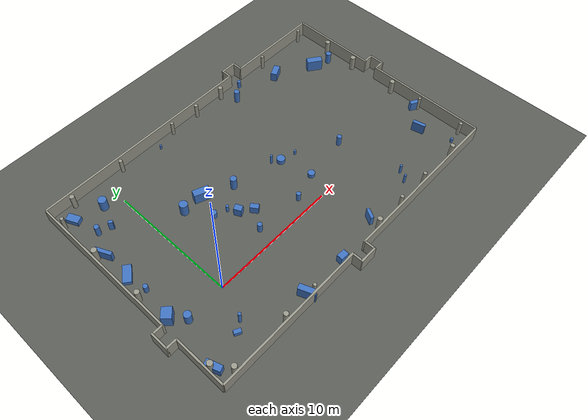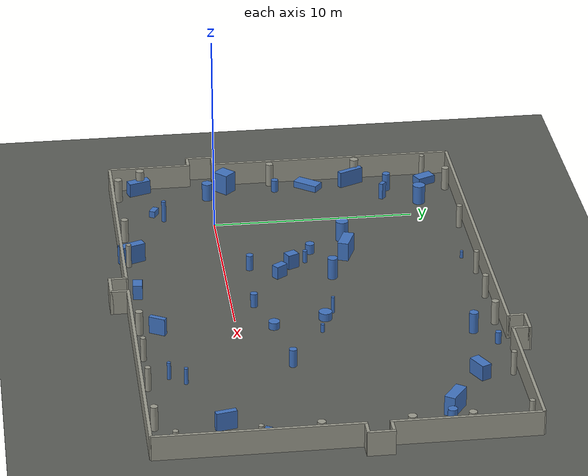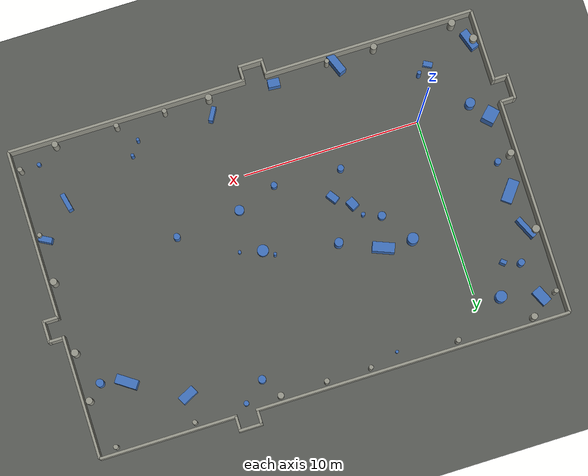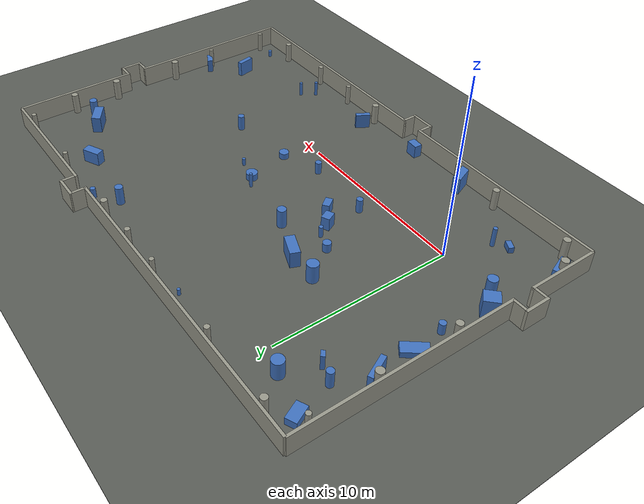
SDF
<sdf version="1.9">
 <world name="default">
  <model name="track_feature">
   <static>true</static>
   <link name="feature_link">
    <collision name="feat_box_1_collision">
     <pose>-3.809810 7.418504 0.416575 0.000000 0.000000 2.005932</pose>
     <geometry><box><size>1.323052 0.273377 0.833149</size></box></geometry>
    </collision>
    <visual name="feat_box_1_visual">
     <pose>-3.809810 7.418504 0.416575 0.000000 0.000000 2.005932</pose>
     <geometry><box><size>1.323052 0.273377 0.833149</size></box></geometry>
     <material><ambient>0.25 0.45 0.75 1</ambient><diffuse>0.25 0.45 0.75 1</diffuse></material>
    </visual>
    <collision name="feat_box_3_collision">
     <pose>-2.042459 8.848114 0.425365 0.000000 0.000000 2.450571</pose>
     <geometry><box><size>0.343209 0.214248 0.850729</size></box></geometry>
    </collision>
    <visual name="feat_box_3_visual">
     <pose>-2.042459 8.848114 0.425365 0.000000 0.000000 2.450571</pose>
     <geometry><box><size>0.343209 0.214248 0.850729</size></box></geometry>
     <material><ambient>0.25 0.45 0.75 1</ambient><diffuse>0.25 0.45 0.75 1</diffuse></material>
    </visual>
    <collision name="feat_box_7_collision">
     <pose>21.452729 0.223334 0.393215 0.000000 0.000000 -0.503645</pose>
     <geometry><box><size>0.743803 0.319657 0.786429</size></box></geometry>
    </collision>
    <visual name="feat_box_7_visual">
     <pose>21.452729 0.223334 0.393215 0.000000 0.000000 -0.503645</pose>
     <geometry><box><size>0.743803 0.319657 0.786429</size></box></geometry>
     <material><ambient>0.25 0.45 0.75 1</ambient><diffuse>0.25 0.45 0.75 1</diffuse></material>
    </visual>
    <collision name="feat_box_9_collision">
     <pose>3.380648 -4.403814 0.484479 0.000000 0.000000 1.941704</pose>
     <geometry><box><size>1.287372 0.425407 0.968957</size></box></geometry>
    </collision>
    <visual name="feat_box_9_visual">
     <pose>3.380648 -4.403814 0.484479 0.000000 0.000000 1.941704</pose>
     <geometry><box><size>1.287372 0.425407 0.968957</size></box></geometry>
     <material><ambient>0.25 0.45 0.75 1</ambient><diffuse>0.25 0.45 0.75 1</diffuse></material>
    </visual>
    <collision name="feat_box_10_collision">
     <pose>10.717737 -3.709006 0.430798 0.000000 0.000000 -2.095517</pose>
     <geometry><box><size>0.815494 0.242279 0.861597</size></box></geometry>
    </collision>
    <visual name="feat_box_10_visual">
     <pose>10.717737 -3.709006 0.430798 0.000000 0.000000 -2.095517</pose>
     <geometry><box><size>0.815494 0.242279 0.861597</size></box></geometry>
     <material><ambient>0.25 0.45 0.75 1</ambient><diffuse>0.25 0.45 0.75 1</diffuse></material>
    </visual>
    <collision name="feat_box_12_collision">
     <pose>4.846630 3.326817 0.373546 0.000000 0.000000 0.445561</pose>
     <geometry><box><size>0.464032 0.587918 0.747092</size></box></geometry>
    </collision>
    <visual name="feat_box_12_visual">
     <pose>4.846630 3.326817 0.373546 0.000000 0.000000 0.445561</pose>
     <geometry><box><size>0.464032 0.587918 0.747092</size></box></geometry>
     <material><ambient>0.25 0.45 0.75 1</ambient><diffuse>0.25 0.45 0.75 1</diffuse></material>
    </visual>
    <collision name="feat_box_15_collision">
     <pose>19.762746 -1.393940 0.451281 0.000000 0.000000 -1.356863</pose>
     <geometry><box><size>0.981033 0.267619 0.902562</size></box></geometry>
    </collision>
    <visual name="feat_box_15_visual">
     <pose>19.762746 -1.393940 0.451281 0.000000 0.000000 -1.356863</pose>
     <geometry><box><size>0.981033 0.267619 0.902562</size></box></geometry>
     <material><ambient>0.25 0.45 0.75 1</ambient><diffuse>0.25 0.45 0.75 1</diffuse></material>
    </visual>
    <collision name="feat_box_16_collision">
     <pose>-3.859514 0.916635 0.530535 0.000000 0.000000 0.785331</pose>
     <geometry><box><size>0.813112 0.728394 1.061070</size></box></geometry>
    </collision>
    <visual name="feat_box_16_visual">
     <pose>-3.859514 0.916635 0.530535 0.000000 0.000000 0.785331</pose>
     <geometry><box><size>0.813112 0.728394 1.061070</size></box></geometry>
     <material><ambient>0.25 0.45 0.75 1</ambient><diffuse>0.25 0.45 0.75 1</diffuse></material>
    </visual>
    <collision name="feat_box_19_collision">
     <pose>-1.501257 -2.917922 0.169748 0.000000 0.000000 -0.487104</pose>
     <geometry><box><size>0.526159 0.292644 0.339495</size></box></geometry>
    </collision>
    <visual name="feat_box_19_visual">
     <pose>-1.501257 -2.917922 0.169748 0.000000 0.000000 -0.487104</pose>
     <geometry><box><size>0.526159 0.292644 0.339495</size></box></geometry>
     <material><ambient>0.25 0.45 0.75 1</ambient><diffuse>0.25 0.45 0.75 1</diffuse></material>
    </visual>
    <collision name="feat_box_20_collision">
     <pose>6.971918 -4.373635 0.371825 0.000000 0.000000 3.059598</pose>
     <geometry><box><size>0.665051 0.462882 0.743650</size></box></geometry>
    </collision>
    <visual name="feat_box_20_visual">
     <pose>6.971918 -4.373635 0.371825 0.000000 0.000000 3.059598</pose>
     <geometry><box><size>0.665051 0.462882 0.743650</size></box></geometry>
     <material><ambient>0.25 0.45 0.75 1</ambient><diffuse>0.25 0.45 0.75 1</diffuse></material>
    </visual>
    <collision name="feat_box_22_collision">
     <pose>-4.081012 -3.498248 0.355935 0.000000 0.000000 1.901082</pose>
     <geometry><box><size>1.129871 0.453120 0.711871</size></box></geometry>
    </collision>
    <visual name="feat_box_22_visual">
     <pose>-4.081012 -3.498248 0.355935 0.000000 0.000000 1.901082</pose>
     <geometry><box><size>1.129871 0.453120 0.711871</size></box></geometry>
     <material><ambient>0.25 0.45 0.75 1</ambient><diffuse>0.25 0.45 0.75 1</diffuse></material>
    </visual>
    <collision name="feat_box_24_collision">
     <pose>3.961923 6.140309 0.469284 0.000000 0.000000 2.761566</pose>
     <geometry><box><size>1.232044 0.540974 0.938568</size></box></geometry>
    </collision>
    <visual name="feat_box_24_visual">
     <pose>3.961923 6.140309 0.469284 0.000000 0.000000 2.761566</pose>
     <geometry><box><size>1.232044 0.540974 0.938568</size></box></geometry>
     <material><ambient>0.25 0.45 0.75 1</ambient><diffuse>0.25 0.45 0.75 1</diffuse></material>
    </visual>
    <collision name="feat_box_29_collision">
     <pose>5.765375 2.644008 0.322663 0.000000 0.000000 2.177901</pose>
     <geometry><box><size>0.639912 0.391079 0.645326</size></box></geometry>
    </collision>
    <visual name="feat_box_29_visual">
     <pose>5.765375 2.644008 0.322663 0.000000 0.000000 2.177901</pose>
     <geometry><box><size>0.639912 0.391079 0.645326</size></box></geometry>
     <material><ambient>0.25 0.45 0.75 1</ambient><diffuse>0.25 0.45 0.75 1</diffuse></material>
    </visual>
    <collision name="feat_box_30_collision">
     <pose>-3.663959 5.187861 0.169745 0.000000 0.000000 -2.227155</pose>
     <geometry><box><size>1.311141 0.619336 0.339490</size></box></geometry>
    </collision>
    <visual name="feat_box_30_visual">
     <pose>-3.663959 5.187861 0.169745 0.000000 0.000000 -2.227155</pose>
     <geometry><box><size>1.311141 0.619336 0.339490</size></box></geometry>
     <material><ambient>0.25 0.45 0.75 1</ambient><diffuse>0.25 0.45 0.75 1</diffuse></material>
    </visual>
    <collision name="feat_box_31_collision">
     <pose>19.454769 8.994990 0.489083 0.000000 0.000000 -0.609888</pose>
     <geometry><box><size>1.230241 0.519669 0.978165</size></box></geometry>
    </collision>
    <visual name="feat_box_31_visual">
     <pose>19.454769 8.994990 0.489083 0.000000 0.000000 -0.609888</pose>
     <geometry><box><size>1.230241 0.519669 0.978165</size></box></geometry>
     <material><ambient>0.25 0.45 0.75 1</ambient><diffuse>0.25 0.45 0.75 1</diffuse></material>
    </visual>
    <collision name="feat_box_32_collision">
     <pose>-3.501859 11.224110 0.211593 0.000000 0.000000 -1.138675</pose>
     <geometry><box><size>0.967530 0.573215 0.423186</size></box></geometry>
    </collision>
    <visual name="feat_box_32_visual">
     <pose>-3.501859 11.224110 0.211593 0.000000 0.000000 -1.138675</pose>
     <geometry><box><size>0.967530 0.573215 0.423186</size></box></geometry>
     <material><ambient>0.25 0.45 0.75 1</ambient><diffuse>0.25 0.45 0.75 1</diffuse></material>
    </visual>
    <collision name="feat_box_39_collision">
     <pose>16.509826 10.660460 0.383737 0.000000 0.000000 0.463177</pose>
     <geometry><box><size>0.990468 0.492767 0.767475</size></box></geometry>
    </collision>
    <visual name="feat_box_39_visual">
     <pose>16.509826 10.660460 0.383737 0.000000 0.000000 0.463177</pose>
     <geometry><box><size>0.990468 0.492767 0.767475</size></box></geometry>
     <material><ambient>0.25 0.45 0.75 1</ambient><diffuse>0.25 0.45 0.75 1</diffuse></material>
    </visual>
    <collision name="feat_cyl_2_collision">
     <pose>13.615934 12.022297 0.303059 0.000000 0.000000 0.000000</pose>
     <geometry><cylinder><radius>0.142957</radius><length>0.606119</length></cylinder></geometry>
    </collision>
    <visual name="feat_cyl_2_visual">
     <pose>13.615934 12.022297 0.303059 0.000000 0.000000 0.000000</pose>
     <geometry><cylinder><radius>0.142957</radius><length>0.606119</length></cylinder></geometry>
     <material><ambient>0.25 0.45 0.75 1</ambient><diffuse>0.25 0.45 0.75 1</diffuse></material>
    </visual>
    <collision name="feat_cyl_4_collision">
     <pose>-1.330142 10.619252 0.488190 0.000000 0.000000 0.000000</pose>
     <geometry><cylinder><radius>0.315775</radius><length>0.976379</length></cylinder></geometry>
    </collision>
    <visual name="feat_cyl_4_visual">
     <pose>-1.330142 10.619252 0.488190 0.000000 0.000000 0.000000</pose>
     <geometry><cylinder><radius>0.315775</radius><length>0.976379</length></cylinder></geometry>
     <material><ambient>0.25 0.45 0.75 1</ambient><diffuse>0.25 0.45 0.75 1</diffuse></material>
    </visual>
    <collision name="feat_cyl_5_collision">
     <pose>-2.956925 9.169408 0.459539 0.000000 0.000000 0.000000</pose>
     <geometry><cylinder><radius>0.188729</radius><length>0.919078</length></cylinder></geometry>
    </collision>
    <visual name="feat_cyl_5_visual">
     <pose>-2.956925 9.169408 0.459539 0.000000 0.000000 0.000000</pose>
     <geometry><cylinder><radius>0.188729</radius><length>0.919078</length></cylinder></geometry>
     <material><ambient>0.25 0.45 0.75 1</ambient><diffuse>0.25 0.45 0.75 1</diffuse></material>
    </visual>
    <collision name="feat_cyl_6_collision">
     <pose>11.529687 4.007475 0.205814 0.000000 0.000000 0.000000</pose>
     <geometry><cylinder><radius>0.092364</radius><length>0.411628</length></cylinder></geometry>
    </collision>
    <visual name="feat_cyl_6_visual">
     <pose>11.529687 4.007475 0.205814 0.000000 0.000000 0.000000</pose>
     <geometry><cylinder><radius>0.092364</radius><length>0.411628</length></cylinder></geometry>
     <material><ambient>0.25 0.45 0.75 1</ambient><diffuse>0.25 0.45 0.75 1</diffuse></material>
    </visual>
    <collision name="feat_cyl_8_collision">
     <pose>4.958024 11.767596 0.180495 0.000000 0.000000 0.000000</pose>
     <geometry><cylinder><radius>0.082929</radius><length>0.360991</length></cylinder></geometry>
    </collision>
    <visual name="feat_cyl_8_visual">
     <pose>4.958024 11.767596 0.180495 0.000000 0.000000 0.000000</pose>
     <geometry><cylinder><radius>0.082929</radius><length>0.360991</length></cylinder></geometry>
     <material><ambient>0.25 0.45 0.75 1</ambient><diffuse>0.25 0.45 0.75 1</diffuse></material>
    </visual>
    <collision name="feat_cyl_11_collision">
     <pose>10.288206 4.299430 0.197554 0.000000 0.000000 0.000000</pose>
     <geometry><cylinder><radius>0.317884</radius><length>0.395107</length></cylinder></geometry>
    </collision>
    <visual name="feat_cyl_11_visual">
     <pose>10.288206 4.299430 0.197554 0.000000 0.000000 0.000000</pose>
     <geometry><cylinder><radius>0.317884</radius><length>0.395107</length></cylinder></geometry>
     <material><ambient>0.25 0.45 0.75 1</ambient><diffuse>0.25 0.45 0.75 1</diffuse></material>
    </visual>
    <collision name="feat_cyl_13_collision">
     <pose>15.575689 -2.805210 0.410484 0.000000 0.000000 0.000000</pose>
     <geometry><cylinder><radius>0.096163</radius><length>0.820969</length></cylinder></geometry>
    </collision>
    <visual name="feat_cyl_13_visual">
     <pose>15.575689 -2.805210 0.410484 0.000000 0.000000 0.000000</pose>
     <geometry><cylinder><radius>0.096163</radius><length>0.820969</length></cylinder></geometry>
     <material><ambient>0.25 0.45 0.75 1</ambient><diffuse>0.25 0.45 0.75 1</diffuse></material>
    </visual>
    <collision name="feat_cyl_14_collision">
     <pose>10.861858 1.783233 0.179074 0.000000 0.000000 0.000000</pose>
     <geometry><cylinder><radius>0.270033</radius><length>0.358148</length></cylinder></geometry>
    </collision>
    <visual name="feat_cyl_14_visual">
     <pose>10.861858 1.783233 0.179074 0.000000 0.000000 0.000000</pose>
     <geometry><cylinder><radius>0.270033</radius><length>0.358148</length></cylinder></geometry>
     <material><ambient>0.25 0.45 0.75 1</ambient><diffuse>0.25 0.45 0.75 1</diffuse></material>
    </visual>
    <collision name="feat_cyl_17_collision">
     <pose>3.488801 4.409248 0.253221 0.000000 0.000000 0.000000</pose>
     <geometry><cylinder><radius>0.221841</radius><length>0.506442</length></cylinder></geometry>
    </collision>
    <visual name="feat_cyl_17_visual">
     <pose>3.488801 4.409248 0.253221 0.000000 0.000000 0.000000</pose>
     <geometry><cylinder><radius>0.221841</radius><length>0.506442</length></cylinder></geometry>
     <material><ambient>0.25 0.45 0.75 1</ambient><diffuse>0.25 0.45 0.75 1</diffuse></material>
    </visual>
    <collision name="feat_cyl_18_collision">
     <pose>6.214896 5.179009 0.538637 0.000000 0.000000 0.000000</pose>
     <geometry><cylinder><radius>0.241900</radius><length>1.077273</length></cylinder></geometry>
    </collision>
    <visual name="feat_cyl_18_visual">
     <pose>6.214896 5.179009 0.538637 0.000000 0.000000 0.000000</pose>
     <geometry><cylinder><radius>0.241900</radius><length>1.077273</length></cylinder></geometry>
     <material><ambient>0.25 0.45 0.75 1</ambient><diffuse>0.25 0.45 0.75 1</diffuse></material>
    </visual>
    <collision name="feat_cyl_21_collision">
     <pose>15.044150 -3.546829 0.434954 0.000000 0.000000 0.000000</pose>
     <geometry><cylinder><radius>0.091175</radius><length>0.869908</length></cylinder></geometry>
    </collision>
    <visual name="feat_cyl_21_visual">
     <pose>15.044150 -3.546829 0.434954 0.000000 0.000000 0.000000</pose>
     <geometry><cylinder><radius>0.091175</radius><length>0.869908</length></cylinder></geometry>
     <material><ambient>0.25 0.45 0.75 1</ambient><diffuse>0.25 0.45 0.75 1</diffuse></material>
    </visual>
    <collision name="feat_cyl_23_collision">
     <pose>12.419615 11.059254 0.525832 0.000000 0.000000 0.000000</pose>
     <geometry><cylinder><radius>0.215356</radius><length>1.051664</length></cylinder></geometry>
    </collision>
    <visual name="feat_cyl_23_visual">
     <pose>12.419615 11.059254 0.525832 0.000000 0.000000 0.000000</pose>
     <geometry><cylinder><radius>0.215356</radius><length>1.051664</length></cylinder></geometry>
     <material><ambient>0.25 0.45 0.75 1</ambient><diffuse>0.25 0.45 0.75 1</diffuse></material>
    </visual>
    <collision name="feat_cyl_25_collision">
     <pose>9.715534 4.732049 0.419815 0.000000 0.000000 0.000000</pose>
     <geometry><cylinder><radius>0.087187</radius><length>0.839630</length></cylinder></geometry>
    </collision>
    <visual name="feat_cyl_25_visual">
     <pose>9.715534 4.732049 0.419815 0.000000 0.000000 0.000000</pose>
     <geometry><cylinder><radius>0.087187</radius><length>0.839630</length></cylinder></geometry>
     <material><ambient>0.25 0.45 0.75 1</ambient><diffuse>0.25 0.45 0.75 1</diffuse></material>
    </visual>
    <collision name="feat_cyl_26_collision">
     <pose>4.453923 4.045645 0.314575 0.000000 0.000000 0.000000</pose>
     <geometry><cylinder><radius>0.110395</radius><length>0.629150</length></cylinder></geometry>
    </collision>
    <visual name="feat_cyl_26_visual">
     <pose>4.453923 4.045645 0.314575 0.000000 0.000000 0.000000</pose>
     <geometry><cylinder><radius>0.110395</radius><length>0.629150</length></cylinder></geometry>
     <material><ambient>0.25 0.45 0.75 1</ambient><diffuse>0.25 0.45 0.75 1</diffuse></material>
    </visual>
    <collision name="feat_cyl_27_collision">
     <pose>-3.493359 3.463626 0.317958 0.000000 0.000000 0.000000</pose>
     <geometry><cylinder><radius>0.174557</radius><length>0.635917</length></cylinder></geometry>
    </collision>
    <visual name="feat_cyl_27_visual">
     <pose>-3.493359 3.463626 0.317958 0.000000 0.000000 0.000000</pose>
     <geometry><cylinder><radius>0.174557</radius><length>0.635917</length></cylinder></geometry>
     <material><ambient>0.25 0.45 0.75 1</ambient><diffuse>0.25 0.45 0.75 1</diffuse></material>
    </visual>
    <collision name="feat_cyl_28_collision">
     <pose>8.643108 1.067017 0.354109 0.000000 0.000000 0.000000</pose>
     <geometry><cylinder><radius>0.171908</radius><length>0.708217</length></cylinder></geometry>
    </collision>
    <visual name="feat_cyl_28_visual">
     <pose>8.643108 1.067017 0.354109 0.000000 0.000000 0.000000</pose>
     <geometry><cylinder><radius>0.171908</radius><length>0.708217</length></cylinder></geometry>
     <material><ambient>0.25 0.45 0.75 1</ambient><diffuse>0.25 0.45 0.75 1</diffuse></material>
    </visual>
    <collision name="feat_cyl_33_collision">
     <pose>2.290929 6.166935 0.521097 0.000000 0.000000 0.000000</pose>
     <geometry><cylinder><radius>0.311683</radius><length>1.042193</length></cylinder></geometry>
    </collision>
    <visual name="feat_cyl_33_visual">
     <pose>2.290929 6.166935 0.521097 0.000000 0.000000 0.000000</pose>
     <geometry><cylinder><radius>0.311683</radius><length>1.042193</length></cylinder></geometry>
     <material><ambient>0.25 0.45 0.75 1</ambient><diffuse>0.25 0.45 0.75 1</diffuse></material>
    </visual>
    <collision name="feat_cyl_34_collision">
     <pose>-3.010940 -0.061690 0.452321 0.000000 0.000000 0.000000</pose>
     <geometry><cylinder><radius>0.269051</radius><length>0.904642</length></cylinder></geometry>
    </collision>
    <visual name="feat_cyl_34_visual">
     <pose>-3.010940 -0.061690 0.452321 0.000000 0.000000 0.000000</pose>
     <geometry><cylinder><radius>0.269051</radius><length>0.904642</length></cylinder></geometry>
     <material><ambient>0.25 0.45 0.75 1</ambient><diffuse>0.25 0.45 0.75 1</diffuse></material>
    </visual>
    <collision name="feat_cyl_35_collision">
     <pose>20.638772 -3.917034 0.184066 0.000000 0.000000 0.000000</pose>
     <geometry><cylinder><radius>0.112194</radius><length>0.368133</length></cylinder></geometry>
    </collision>
    <visual name="feat_cyl_35_visual">
     <pose>20.638772 -3.917034 0.184066 0.000000 0.000000 0.000000</pose>
     <geometry><cylinder><radius>0.112194</radius><length>0.368133</length></cylinder></geometry>
     <material><ambient>0.25 0.45 0.75 1</ambient><diffuse>0.25 0.45 0.75 1</diffuse></material>
    </visual>
    <collision name="feat_cyl_36_collision">
     <pose>4.872748 1.266040 0.396906 0.000000 0.000000 0.000000</pose>
     <geometry><cylinder><radius>0.177198</radius><length>0.793813</length></cylinder></geometry>
    </collision>
    <visual name="feat_cyl_36_visual">
     <pose>4.872748 1.266040 0.396906 0.000000 0.000000 0.000000</pose>
     <geometry><cylinder><radius>0.177198</radius><length>0.793813</length></cylinder></geometry>
     <material><ambient>0.25 0.45 0.75 1</ambient><diffuse>0.25 0.45 0.75 1</diffuse></material>
    </visual>
    <collision name="feat_cyl_37_collision">
     <pose>-0.820698 -2.466021 0.555763 0.000000 0.000000 0.000000</pose>
     <geometry><cylinder><radius>0.112846</radius><length>1.111527</length></cylinder></geometry>
    </collision>
    <visual name="feat_cyl_37_visual">
     <pose>-0.820698 -2.466021 0.555763 0.000000 0.000000 0.000000</pose>
     <geometry><cylinder><radius>0.112846</radius><length>1.111527</length></cylinder></geometry>
     <material><ambient>0.25 0.45 0.75 1</ambient><diffuse>0.25 0.45 0.75 1</diffuse></material>
    </visual>
    <collision name="feat_cyl_38_collision">
     <pose>20.852837 8.632846 0.469570 0.000000 0.000000 0.000000</pose>
     <geometry><cylinder><radius>0.219843</radius><length>0.939141</length></cylinder></geometry>
    </collision>
    <visual name="feat_cyl_38_visual">
     <pose>20.852837 8.632846 0.469570 0.000000 0.000000 0.000000</pose>
     <geometry><cylinder><radius>0.219843</radius><length>0.939141</length></cylinder></geometry>
     <material><ambient>0.25 0.45 0.75 1</ambient><diffuse>0.25 0.45 0.75 1</diffuse></material>
    </visual>
    <collision name="feat_cyl_40_collision">
     <pose>14.558220 2.235412 0.444483 0.000000 0.000000 0.000000</pose>
     <geometry><cylinder><radius>0.183471</radius><length>0.888966</length></cylinder></geometry>
    </collision>
    <visual name="feat_cyl_40_visual">
     <pose>14.558220 2.235412 0.444483 0.000000 0.000000 0.000000</pose>
     <geometry><cylinder><radius>0.183471</radius><length>0.888966</length></cylinder></geometry>
     <material><ambient>0.25 0.45 0.75 1</ambient><diffuse>0.25 0.45 0.75 1</diffuse></material>
    </visual>
   </link>
  </model>
  <model name="track_ground">
   <static>true</static>
   <link name="ground_link">
    <collision name="ground_collision">
     <pose>8.539221 3.998674 -0.025000 0.000000 0.000000 0.000000</pose>
     <geometry><box><size>80.000000 80.000000 0.050000</size></box></geometry>
     <surface>
      <friction><ode><mu>1.2</mu><mu2>1.2</mu2></ode></friction>
      <contact><ode><kp>100000.0</kp><kd>10.0</kd></ode></contact>
     </surface>
    </collision>
    <visual name="ground_visual">
     <pose>8.539221 3.998674 -0.025000 0.000000 0.000000 0.000000</pose>
     <geometry><box><size>80.000000 80.000000 0.050000</size></box></geometry>
     <material><ambient>0.35 0.36 0.34 1</ambient><diffuse>0.35 0.36 0.34 1</diffuse></material>
    </visual>
   </link>
  </model>
  <model name="track_room">
   <static>true</static>
   <link name="room_link">
    <collision name="hall_0_0_collision">
     <pose>1.369040 -4.927946 0.600000 0.000000 0.000000 0.000000</pose>
     <geometry><box><size>11.927614 0.150000 1.200000</size></box></geometry>
    </collision>
    <visual name="hall_0_0_visual">
     <pose>1.369040 -4.927946 0.600000 0.000000 0.000000 0.000000</pose>
     <geometry><box><size>11.927614 0.150000 1.200000</size></box></geometry>
     <material><ambient>0.6 0.6 0.55 1</ambient><diffuse>0.6 0.6 0.55 1</diffuse></material>
    </visual>
    <collision name="hall_0_130_collision">
     <pose>15.236692 -4.927946 0.600000 0.000000 0.000000 0.000000</pose>
     <geometry><box><size>13.556134 0.150000 1.200000</size></box></geometry>
    </collision>
    <visual name="hall_0_130_visual">
     <pose>15.236692 -4.927946 0.600000 0.000000 0.000000 0.000000</pose>
     <geometry><box><size>13.556134 0.150000 1.200000</size></box></geometry>
     <material><ambient>0.6 0.6 0.55 1</ambient><diffuse>0.6 0.6 0.55 1</diffuse></material>
    </visual>
    <collision name="hall_niche_0_collision">
     <pose>7.895736 -5.727946 0.600000 0.000000 0.000000 0.000000</pose>
     <geometry><box><size>1.425778 0.150000 1.200000</size></box></geometry>
    </collision>
    <visual name="hall_niche_0_visual">
     <pose>7.895736 -5.727946 0.600000 0.000000 0.000000 0.000000</pose>
     <geometry><box><size>1.425778 0.150000 1.200000</size></box></geometry>
     <material><ambient>0.6 0.6 0.55 1</ambient><diffuse>0.6 0.6 0.55 1</diffuse></material>
    </visual>
    <collision name="hall_jamb_0_-1_collision">
     <pose>7.257847 -5.327946 0.600000 0.000000 0.000000 0.000000</pose>
     <geometry><box><size>0.150000 0.800000 1.200000</size></box></geometry>
    </collision>
    <visual name="hall_jamb_0_-1_visual">
     <pose>7.257847 -5.327946 0.600000 0.000000 0.000000 0.000000</pose>
     <geometry><box><size>0.150000 0.800000 1.200000</size></box></geometry>
     <material><ambient>0.6 0.6 0.55 1</ambient><diffuse>0.6 0.6 0.55 1</diffuse></material>
    </visual>
    <collision name="hall_jamb_0_1_collision">
     <pose>8.533626 -5.327946 0.600000 0.000000 0.000000 0.000000</pose>
     <geometry><box><size>0.150000 0.800000 1.200000</size></box></geometry>
    </collision>
    <visual name="hall_jamb_0_1_visual">
     <pose>8.533626 -5.327946 0.600000 0.000000 0.000000 0.000000</pose>
     <geometry><box><size>0.150000 0.800000 1.200000</size></box></geometry>
     <material><ambient>0.6 0.6 0.55 1</ambient><diffuse>0.6 0.6 0.55 1</diffuse></material>
    </visual>
    <collision name="hall_1_0_collision">
     <pose>22.014759 -0.145279 0.600000 0.000000 0.000000 1.570796</pose>
     <geometry><box><size>9.565334 0.150000 1.200000</size></box></geometry>
    </collision>
    <visual name="hall_1_0_visual">
     <pose>22.014759 -0.145279 0.600000 0.000000 0.000000 1.570796</pose>
     <geometry><box><size>9.565334 0.150000 1.200000</size></box></geometry>
     <material><ambient>0.6 0.6 0.55 1</ambient><diffuse>0.6 0.6 0.55 1</diffuse></material>
    </visual>
    <collision name="hall_1_105_collision">
     <pose>22.014759 9.091149 0.600000 0.000000 0.000000 1.570796</pose>
     <geometry><box><size>6.918479 0.150000 1.200000</size></box></geometry>
    </collision>
    <visual name="hall_1_105_visual">
     <pose>22.014759 9.091149 0.600000 0.000000 0.000000 1.570796</pose>
     <geometry><box><size>6.918479 0.150000 1.200000</size></box></geometry>
     <material><ambient>0.6 0.6 0.55 1</ambient><diffuse>0.6 0.6 0.55 1</diffuse></material>
    </visual>
    <collision name="hall_niche_1_collision">
     <pose>22.814759 5.134649 0.600000 0.000000 0.000000 1.570796</pose>
     <geometry><box><size>1.294522 0.150000 1.200000</size></box></geometry>
    </collision>
    <visual name="hall_niche_1_visual">
     <pose>22.814759 5.134649 0.600000 0.000000 0.000000 1.570796</pose>
     <geometry><box><size>1.294522 0.150000 1.200000</size></box></geometry>
     <material><ambient>0.6 0.6 0.55 1</ambient><diffuse>0.6 0.6 0.55 1</diffuse></material>
    </visual>
    <collision name="hall_jamb_1_-1_collision">
     <pose>22.414759 4.562388 0.600000 0.000000 0.000000 1.570796</pose>
     <geometry><box><size>0.150000 0.800000 1.200000</size></box></geometry>
    </collision>
    <visual name="hall_jamb_1_-1_visual">
     <pose>22.414759 4.562388 0.600000 0.000000 0.000000 1.570796</pose>
     <geometry><box><size>0.150000 0.800000 1.200000</size></box></geometry>
     <material><ambient>0.6 0.6 0.55 1</ambient><diffuse>0.6 0.6 0.55 1</diffuse></material>
    </visual>
    <collision name="hall_jamb_1_1_collision">
     <pose>22.414759 5.706910 0.600000 0.000000 0.000000 1.570796</pose>
     <geometry><box><size>0.150000 0.800000 1.200000</size></box></geometry>
    </collision>
    <visual name="hall_jamb_1_1_visual">
     <pose>22.414759 5.706910 0.600000 0.000000 0.000000 1.570796</pose>
     <geometry><box><size>0.150000 0.800000 1.200000</size></box></geometry>
     <material><ambient>0.6 0.6 0.55 1</ambient><diffuse>0.6 0.6 0.55 1</diffuse></material>
    </visual>
    <collision name="hall_2_0_collision">
     <pose>18.151299 12.550389 0.600000 0.000000 0.000000 3.141593</pose>
     <geometry><box><size>7.726921 0.150000 1.200000</size></box></geometry>
    </collision>
    <visual name="hall_2_0_visual">
     <pose>18.151299 12.550389 0.600000 0.000000 0.000000 3.141593</pose>
     <geometry><box><size>7.726921 0.150000 1.200000</size></box></geometry>
     <material><ambient>0.6 0.6 0.55 1</ambient><diffuse>0.6 0.6 0.55 1</diffuse></material>
    </visual>
    <collision name="hall_2_87_collision">
     <pose>4.318806 12.550389 0.600000 0.000000 0.000000 3.141593</pose>
     <geometry><box><size>17.827145 0.150000 1.200000</size></box></geometry>
    </collision>
    <visual name="hall_2_87_visual">
     <pose>4.318806 12.550389 0.600000 0.000000 0.000000 3.141593</pose>
     <geometry><box><size>17.827145 0.150000 1.200000</size></box></geometry>
     <material><ambient>0.6 0.6 0.55 1</ambient><diffuse>0.6 0.6 0.55 1</diffuse></material>
    </visual>
    <collision name="hall_niche_2_collision">
     <pose>13.760108 13.350389 0.600000 0.000000 0.000000 3.141593</pose>
     <geometry><box><size>1.355460 0.150000 1.200000</size></box></geometry>
    </collision>
    <visual name="hall_niche_2_visual">
     <pose>13.760108 13.350389 0.600000 0.000000 0.000000 3.141593</pose>
     <geometry><box><size>1.355460 0.150000 1.200000</size></box></geometry>
     <material><ambient>0.6 0.6 0.55 1</ambient><diffuse>0.6 0.6 0.55 1</diffuse></material>
    </visual>
    <collision name="hall_jamb_2_-1_collision">
     <pose>14.362838 12.950389 0.600000 0.000000 0.000000 3.141593</pose>
     <geometry><box><size>0.150000 0.800000 1.200000</size></box></geometry>
    </collision>
    <visual name="hall_jamb_2_-1_visual">
     <pose>14.362838 12.950389 0.600000 0.000000 0.000000 3.141593</pose>
     <geometry><box><size>0.150000 0.800000 1.200000</size></box></geometry>
     <material><ambient>0.6 0.6 0.55 1</ambient><diffuse>0.6 0.6 0.55 1</diffuse></material>
    </visual>
    <collision name="hall_jamb_2_1_collision">
     <pose>13.157378 12.950389 0.600000 0.000000 0.000000 3.141593</pose>
     <geometry><box><size>0.150000 0.800000 1.200000</size></box></geometry>
    </collision>
    <visual name="hall_jamb_2_1_visual">
     <pose>13.157378 12.950389 0.600000 0.000000 0.000000 3.141593</pose>
     <geometry><box><size>0.150000 0.800000 1.200000</size></box></geometry>
     <material><ambient>0.6 0.6 0.55 1</ambient><diffuse>0.6 0.6 0.55 1</diffuse></material>
    </visual>
    <collision name="hall_3_0_collision">
     <pose>-4.594767 6.441453 0.600000 0.000000 0.000000 -1.570796</pose>
     <geometry><box><size>12.217872 0.150000 1.200000</size></box></geometry>
    </collision>
    <visual name="hall_3_0_visual">
     <pose>-4.594767 6.441453 0.600000 0.000000 0.000000 -1.570796</pose>
     <geometry><box><size>12.217872 0.150000 1.200000</size></box></geometry>
     <material><ambient>0.6 0.6 0.55 1</ambient><diffuse>0.6 0.6 0.55 1</diffuse></material>
    </visual>
    <collision name="hall_3_133_collision">
     <pose>-4.594767 -2.869752 0.600000 0.000000 0.000000 -1.570796</pose>
     <geometry><box><size>4.116388 0.150000 1.200000</size></box></geometry>
    </collision>
    <visual name="hall_3_133_visual">
     <pose>-4.594767 -2.869752 0.600000 0.000000 0.000000 -1.570796</pose>
     <geometry><box><size>4.116388 0.150000 1.200000</size></box></geometry>
     <material><ambient>0.6 0.6 0.55 1</ambient><diffuse>0.6 0.6 0.55 1</diffuse></material>
    </visual>
    <collision name="hall_niche_3_collision">
     <pose>-5.394767 -0.239521 0.600000 0.000000 0.000000 -1.570796</pose>
     <geometry><box><size>1.444075 0.150000 1.200000</size></box></geometry>
    </collision>
    <visual name="hall_niche_3_visual">
     <pose>-5.394767 -0.239521 0.600000 0.000000 0.000000 -1.570796</pose>
     <geometry><box><size>1.444075 0.150000 1.200000</size></box></geometry>
     <material><ambient>0.6 0.6 0.55 1</ambient><diffuse>0.6 0.6 0.55 1</diffuse></material>
    </visual>
    <collision name="hall_jamb_3_-1_collision">
     <pose>-4.994767 0.407517 0.600000 0.000000 0.000000 -1.570796</pose>
     <geometry><box><size>0.150000 0.800000 1.200000</size></box></geometry>
    </collision>
    <visual name="hall_jamb_3_-1_visual">
     <pose>-4.994767 0.407517 0.600000 0.000000 0.000000 -1.570796</pose>
     <geometry><box><size>0.150000 0.800000 1.200000</size></box></geometry>
     <material><ambient>0.6 0.6 0.55 1</ambient><diffuse>0.6 0.6 0.55 1</diffuse></material>
    </visual>
    <collision name="hall_jamb_3_1_collision">
     <pose>-4.994767 -0.886559 0.600000 0.000000 0.000000 -1.570796</pose>
     <geometry><box><size>0.150000 0.800000 1.200000</size></box></geometry>
    </collision>
    <visual name="hall_jamb_3_1_visual">
     <pose>-4.994767 -0.886559 0.600000 0.000000 0.000000 -1.570796</pose>
     <geometry><box><size>0.150000 0.800000 1.200000</size></box></geometry>
     <material><ambient>0.6 0.6 0.55 1</ambient><diffuse>0.6 0.6 0.55 1</diffuse></material>
    </visual>
    <collision name="column_0_12_collision">
     <pose>-3.368461 -4.577946 0.600000 0.000000 0.000000 0.000000</pose>
     <geometry><cylinder><radius>0.195168</radius><length>1.200000</length></cylinder></geometry>
    </collision>
    <visual name="column_0_12_visual">
     <pose>-3.368461 -4.577946 0.600000 0.000000 0.000000 0.000000</pose>
     <geometry><cylinder><radius>0.195168</radius><length>1.200000</length></cylinder></geometry>
     <material><ambient>0.6 0.6 0.55 1</ambient><diffuse>0.6 0.6 0.55 1</diffuse></material>
    </visual>
    <collision name="column_0_57_collision">
     <pose>1.140115 -4.577946 0.600000 0.000000 0.000000 0.000000</pose>
     <geometry><cylinder><radius>0.179406</radius><length>1.200000</length></cylinder></geometry>
    </collision>
    <visual name="column_0_57_visual">
     <pose>1.140115 -4.577946 0.600000 0.000000 0.000000 0.000000</pose>
     <geometry><cylinder><radius>0.179406</radius><length>1.200000</length></cylinder></geometry>
     <material><ambient>0.6 0.6 0.55 1</ambient><diffuse>0.6 0.6 0.55 1</diffuse></material>
    </visual>
    <collision name="column_0_84_collision">
     <pose>3.852516 -4.577946 0.600000 0.000000 0.000000 0.000000</pose>
     <geometry><cylinder><radius>0.126699</radius><length>1.200000</length></cylinder></geometry>
    </collision>
    <visual name="column_0_84_visual">
     <pose>3.852516 -4.577946 0.600000 0.000000 0.000000 0.000000</pose>
     <geometry><cylinder><radius>0.126699</radius><length>1.200000</length></cylinder></geometry>
     <material><ambient>0.6 0.6 0.55 1</ambient><diffuse>0.6 0.6 0.55 1</diffuse></material>
    </visual>
    <collision name="column_0_152_collision">
     <pose>10.651015 -4.577946 0.600000 0.000000 0.000000 0.000000</pose>
     <geometry><cylinder><radius>0.182944</radius><length>1.200000</length></cylinder></geometry>
    </collision>
    <visual name="column_0_152_visual">
     <pose>10.651015 -4.577946 0.600000 0.000000 0.000000 0.000000</pose>
     <geometry><cylinder><radius>0.182944</radius><length>1.200000</length></cylinder></geometry>
     <material><ambient>0.6 0.6 0.55 1</ambient><diffuse>0.6 0.6 0.55 1</diffuse></material>
    </visual>
    <collision name="column_0_177_collision">
     <pose>13.189530 -4.577946 0.600000 0.000000 0.000000 0.000000</pose>
     <geometry><cylinder><radius>0.131364</radius><length>1.200000</length></cylinder></geometry>
    </collision>
    <visual name="column_0_177_visual">
     <pose>13.189530 -4.577946 0.600000 0.000000 0.000000 0.000000</pose>
     <geometry><cylinder><radius>0.131364</radius><length>1.200000</length></cylinder></geometry>
     <material><ambient>0.6 0.6 0.55 1</ambient><diffuse>0.6 0.6 0.55 1</diffuse></material>
    </visual>
    <collision name="column_0_205_collision">
     <pose>15.941018 -4.577946 0.600000 0.000000 0.000000 0.000000</pose>
     <geometry><cylinder><radius>0.138918</radius><length>1.200000</length></cylinder></geometry>
    </collision>
    <visual name="column_0_205_visual">
     <pose>15.941018 -4.577946 0.600000 0.000000 0.000000 0.000000</pose>
     <geometry><cylinder><radius>0.138918</radius><length>1.200000</length></cylinder></geometry>
     <material><ambient>0.6 0.6 0.55 1</ambient><diffuse>0.6 0.6 0.55 1</diffuse></material>
    </visual>
    <collision name="column_0_240_collision">
     <pose>19.446439 -4.577946 0.600000 0.000000 0.000000 0.000000</pose>
     <geometry><cylinder><radius>0.173685</radius><length>1.200000</length></cylinder></geometry>
    </collision>
    <visual name="column_0_240_visual">
     <pose>19.446439 -4.577946 0.600000 0.000000 0.000000 0.000000</pose>
     <geometry><cylinder><radius>0.173685</radius><length>1.200000</length></cylinder></geometry>
     <material><ambient>0.6 0.6 0.55 1</ambient><diffuse>0.6 0.6 0.55 1</diffuse></material>
    </visual>
    <collision name="column_1_11_collision">
     <pose>21.664759 -3.808618 0.600000 0.000000 0.000000 0.000000</pose>
     <geometry><cylinder><radius>0.132313</radius><length>1.200000</length></cylinder></geometry>
    </collision>
    <visual name="column_1_11_visual">
     <pose>21.664759 -3.808618 0.600000 0.000000 0.000000 0.000000</pose>
     <geometry><cylinder><radius>0.132313</radius><length>1.200000</length></cylinder></geometry>
     <material><ambient>0.6 0.6 0.55 1</ambient><diffuse>0.6 0.6 0.55 1</diffuse></material>
    </visual>
    <collision name="column_1_48_collision">
     <pose>21.664759 -0.030805 0.600000 0.000000 0.000000 0.000000</pose>
     <geometry><cylinder><radius>0.121312</radius><length>1.200000</length></cylinder></geometry>
    </collision>
    <visual name="column_1_48_visual">
     <pose>21.664759 -0.030805 0.600000 0.000000 0.000000 0.000000</pose>
     <geometry><cylinder><radius>0.121312</radius><length>1.200000</length></cylinder></geometry>
     <material><ambient>0.6 0.6 0.55 1</ambient><diffuse>0.6 0.6 0.55 1</diffuse></material>
    </visual>
    <collision name="column_1_75_collision">
     <pose>21.664759 2.646565 0.600000 0.000000 0.000000 0.000000</pose>
     <geometry><cylinder><radius>0.195272</radius><length>1.200000</length></cylinder></geometry>
    </collision>
    <visual name="column_1_75_visual">
     <pose>21.664759 2.646565 0.600000 0.000000 0.000000 0.000000</pose>
     <geometry><cylinder><radius>0.195272</radius><length>1.200000</length></cylinder></geometry>
     <material><ambient>0.6 0.6 0.55 1</ambient><diffuse>0.6 0.6 0.55 1</diffuse></material>
    </visual>
    <collision name="column_1_116_collision">
     <pose>21.664759 6.687077 0.600000 0.000000 0.000000 0.000000</pose>
     <geometry><cylinder><radius>0.204436</radius><length>1.200000</length></cylinder></geometry>
    </collision>
    <visual name="column_1_116_visual">
     <pose>21.664759 6.687077 0.600000 0.000000 0.000000 0.000000</pose>
     <geometry><cylinder><radius>0.204436</radius><length>1.200000</length></cylinder></geometry>
     <material><ambient>0.6 0.6 0.55 1</ambient><diffuse>0.6 0.6 0.55 1</diffuse></material>
    </visual>
    <collision name="column_1_143_collision">
     <pose>21.664759 9.403907 0.600000 0.000000 0.000000 0.000000</pose>
     <geometry><cylinder><radius>0.190650</radius><length>1.200000</length></cylinder></geometry>
    </collision>
    <visual name="column_1_143_visual">
     <pose>21.664759 9.403907 0.600000 0.000000 0.000000 0.000000</pose>
     <geometry><cylinder><radius>0.190650</radius><length>1.200000</length></cylinder></geometry>
     <material><ambient>0.6 0.6 0.55 1</ambient><diffuse>0.6 0.6 0.55 1</diffuse></material>
    </visual>
    <collision name="column_2_10_collision">
     <pose>21.005654 12.200389 0.600000 0.000000 0.000000 0.000000</pose>
     <geometry><cylinder><radius>0.130757</radius><length>1.200000</length></cylinder></geometry>
    </collision>
    <visual name="column_2_10_visual">
     <pose>21.005654 12.200389 0.600000 0.000000 0.000000 0.000000</pose>
     <geometry><cylinder><radius>0.130757</radius><length>1.200000</length></cylinder></geometry>
     <material><ambient>0.6 0.6 0.55 1</ambient><diffuse>0.6 0.6 0.55 1</diffuse></material>
    </visual>
    <collision name="column_2_54_collision">
     <pose>16.566561 12.200389 0.600000 0.000000 0.000000 0.000000</pose>
     <geometry><cylinder><radius>0.129743</radius><length>1.200000</length></cylinder></geometry>
    </collision>
    <visual name="column_2_54_visual">
     <pose>16.566561 12.200389 0.600000 0.000000 0.000000 0.000000</pose>
     <geometry><cylinder><radius>0.129743</radius><length>1.200000</length></cylinder></geometry>
     <material><ambient>0.6 0.6 0.55 1</ambient><diffuse>0.6 0.6 0.55 1</diffuse></material>
    </visual>
    <collision name="column_2_102_collision">
     <pose>11.715033 12.200389 0.600000 0.000000 0.000000 0.000000</pose>
     <geometry><cylinder><radius>0.178693</radius><length>1.200000</length></cylinder></geometry>
    </collision>
    <visual name="column_2_102_visual">
     <pose>11.715033 12.200389 0.600000 0.000000 0.000000 0.000000</pose>
     <geometry><cylinder><radius>0.178693</radius><length>1.200000</length></cylinder></geometry>
     <material><ambient>0.6 0.6 0.55 1</ambient><diffuse>0.6 0.6 0.55 1</diffuse></material>
    </visual>
    <collision name="column_2_129_collision">
     <pose>9.104987 12.200389 0.600000 0.000000 0.000000 0.000000</pose>
     <geometry><cylinder><radius>0.148621</radius><length>1.200000</length></cylinder></geometry>
    </collision>
    <visual name="column_2_129_visual">
     <pose>9.104987 12.200389 0.600000 0.000000 0.000000 0.000000</pose>
     <geometry><cylinder><radius>0.148621</radius><length>1.200000</length></cylinder></geometry>
     <material><ambient>0.6 0.6 0.55 1</ambient><diffuse>0.6 0.6 0.55 1</diffuse></material>
    </visual>
    <collision name="column_2_154_collision">
     <pose>6.603406 12.200389 0.600000 0.000000 0.000000 0.000000</pose>
     <geometry><cylinder><radius>0.127489</radius><length>1.200000</length></cylinder></geometry>
    </collision>
    <visual name="column_2_154_visual">
     <pose>6.603406 12.200389 0.600000 0.000000 0.000000 0.000000</pose>
     <geometry><cylinder><radius>0.127489</radius><length>1.200000</length></cylinder></geometry>
     <material><ambient>0.6 0.6 0.55 1</ambient><diffuse>0.6 0.6 0.55 1</diffuse></material>
    </visual>
    <collision name="column_2_203_collision">
     <pose>1.640383 12.200389 0.600000 0.000000 0.000000 0.000000</pose>
     <geometry><cylinder><radius>0.143410</radius><length>1.200000</length></cylinder></geometry>
    </collision>
    <visual name="column_2_203_visual">
     <pose>1.640383 12.200389 0.600000 0.000000 0.000000 0.000000</pose>
     <geometry><cylinder><radius>0.143410</radius><length>1.200000</length></cylinder></geometry>
     <material><ambient>0.6 0.6 0.55 1</ambient><diffuse>0.6 0.6 0.55 1</diffuse></material>
    </visual>
    <collision name="column_2_246_collision">
     <pose>-2.679099 12.200389 0.600000 0.000000 0.000000 0.000000</pose>
     <geometry><cylinder><radius>0.181770</radius><length>1.200000</length></cylinder></geometry>
    </collision>
    <visual name="column_2_246_visual">
     <pose>-2.679099 12.200389 0.600000 0.000000 0.000000 0.000000</pose>
     <geometry><cylinder><radius>0.181770</radius><length>1.200000</length></cylinder></geometry>
     <material><ambient>0.6 0.6 0.55 1</ambient><diffuse>0.6 0.6 0.55 1</diffuse></material>
    </visual>
    <collision name="column_3_13_collision">
     <pose>-4.244767 11.220436 0.600000 0.000000 0.000000 0.000000</pose>
     <geometry><cylinder><radius>0.133348</radius><length>1.200000</length></cylinder></geometry>
    </collision>
    <visual name="column_3_13_visual">
     <pose>-4.244767 11.220436 0.600000 0.000000 0.000000 0.000000</pose>
     <geometry><cylinder><radius>0.133348</radius><length>1.200000</length></cylinder></geometry>
     <material><ambient>0.6 0.6 0.55 1</ambient><diffuse>0.6 0.6 0.55 1</diffuse></material>
    </visual>
    <collision name="column_3_48_collision">
     <pose>-4.244767 7.675850 0.600000 0.000000 0.000000 0.000000</pose>
     <geometry><cylinder><radius>0.213611</radius><length>1.200000</length></cylinder></geometry>
    </collision>
    <visual name="column_3_48_visual">
     <pose>-4.244767 7.675850 0.600000 0.000000 0.000000 0.000000</pose>
     <geometry><cylinder><radius>0.213611</radius><length>1.200000</length></cylinder></geometry>
     <material><ambient>0.6 0.6 0.55 1</ambient><diffuse>0.6 0.6 0.55 1</diffuse></material>
    </visual>
    <collision name="column_3_92_collision">
     <pose>-4.244767 3.277994 0.600000 0.000000 0.000000 0.000000</pose>
     <geometry><cylinder><radius>0.189397</radius><length>1.200000</length></cylinder></geometry>
    </collision>
    <visual name="column_3_92_visual">
     <pose>-4.244767 3.277994 0.600000 0.000000 0.000000 0.000000</pose>
     <geometry><cylinder><radius>0.189397</radius><length>1.200000</length></cylinder></geometry>
     <material><ambient>0.6 0.6 0.55 1</ambient><diffuse>0.6 0.6 0.55 1</diffuse></material>
    </visual>
    <collision name="column_3_159_collision">
     <pose>-4.244767 -3.402211 0.600000 0.000000 0.000000 0.000000</pose>
     <geometry><cylinder><radius>0.208359</radius><length>1.200000</length></cylinder></geometry>
    </collision>
    <visual name="column_3_159_visual">
     <pose>-4.244767 -3.402211 0.600000 0.000000 0.000000 0.000000</pose>
     <geometry><cylinder><radius>0.208359</radius><length>1.200000</length></cylinder></geometry>
     <material><ambient>0.6 0.6 0.55 1</ambient><diffuse>0.6 0.6 0.55 1</diffuse></material>
    </visual>
   </link>
  </model>
 </world>
</sdf>
